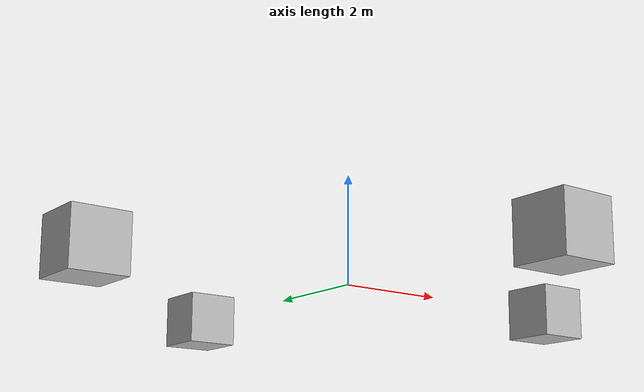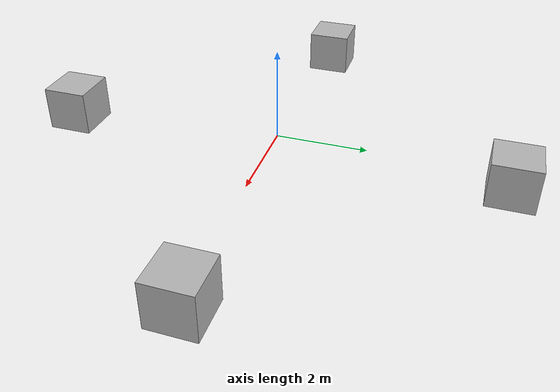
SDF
<?xml version="1.0" ?>
<sdf version="1.11">
  <![CDATA[
  This model is used to verify the "gz sdf --inertial-stats" tool.
  ]]>
    <model name="test_model">
      <pose>0 0 0 0 0 0</pose>

      <!-- set //inertial/density -->
      <link name="link_1">
        <pose>5 0 0 0 0 0</pose>
        <inertial auto="true">
          <density>6</density>
        </inertial>
        <collision name="collision_1">
          <geometry>
            <box>
              <size>1 1 1</size>
            </box>
          </geometry>
        </collision>
        <visual name="visual_1">
          <geometry>
            <box>
              <size>1 1 1</size>
            </box>
          </geometry>
        </visual>
      </link>

      <!-- set //inertial/mass and default collision density -->
      <link name="link_2">
        <pose>-5 0 0 0 0 0</pose>
        <inertial auto="true">
          <mass>6</mass>
        </inertial>
        <collision name="collision_2">
          <density>1000</density>
          <geometry>
            <box>
              <size>1 1 1</size>
            </box>
          </geometry>
        </collision>
        <visual name="visual_2">
          <geometry>
            <box>
              <size>1 1 1</size>
            </box>
          </geometry>
        </visual>
      </link>

      <!-- use two half-cube collisions instead of single cube -->
      <!-- set //inertial/mass and default collision density -->
      <link name="link_3">
        <pose>0 5 0 0 0 0</pose>
        <inertial auto="true">
          <mass>6</mass>
        </inertial>
        <collision name="collision_3_up">
          <pose>0 0 0.25 0 0 0</pose>
          <density>1000</density>
          <geometry>
            <box>
              <size>1 1 0.5</size>
            </box>
          </geometry>
        </collision>
        <collision name="collision_3_down">
          <pose>0 0 -0.25 0 0 0</pose>
          <density>1000</density>
          <geometry>
            <box>
              <size>1 1 0.5</size>
            </box>
          </geometry>
        </collision>
        <visual name="visual_3">
          <geometry>
            <box>
              <size>1 1 1</size>
            </box>
          </geometry>
        </visual>
      </link>

      <!-- use two half-cube collisions instead of single cube -->
      <!-- set //inertial/mass and identical non-default collision densities -->
      <link name="link_4">
        <pose>0 -5 0 0 0 0</pose>
        <inertial auto="true">
          <mass>6</mass>
        </inertial>
        <collision name="collision_4_up">
          <pose>0 0 0.25 0 0 0</pose>
          <density>123.456</density>
          <geometry>
            <box>
              <size>1 1 0.5</size>
            </box>
          </geometry>
        </collision>
        <collision name="collision_4_down">
          <pose>0 0 -0.25 0 0 0</pose>
          <density>123.456</density>
          <geometry>
            <box>
              <size>1 1 0.5</size>
            </box>
          </geometry>
        </collision>
        <visual name="visual_4">
          <geometry>
            <box>
              <size>1 1 1</size>
            </box>
          </geometry>
        </visual>
      </link>
    </model>

</sdf>
